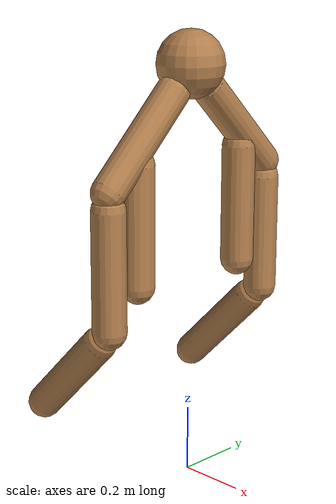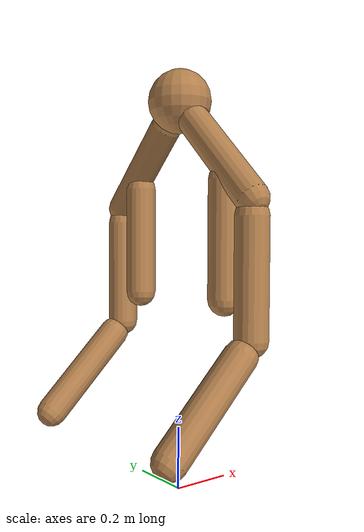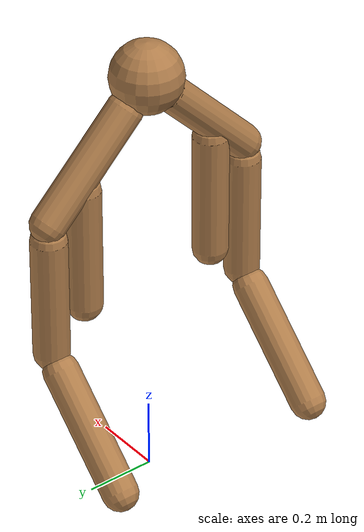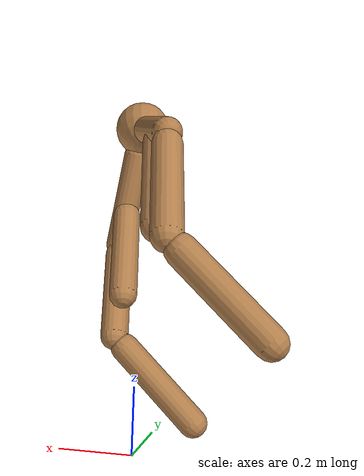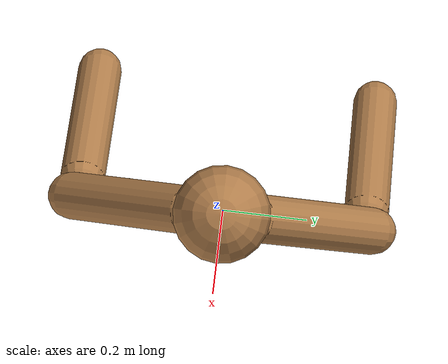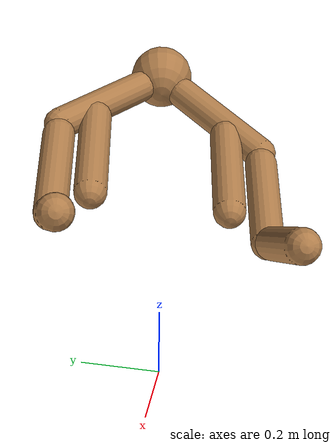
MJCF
<?xml version='1.0' encoding='UTF-8'?>
<!-- Universal Animal Template: unimal -->
<mujoco model="unimal">
  <compiler angle="degree"/>
  <size njmax="2000" nconmax="500"/>
  <option timestep=".005">
    <flag filterparent="disable"/>
  </option>
  <!-- Common defaults to make search space tractable -->
  <default>
    <!-- Define motor defaults -->
    <motor ctrlrange="-1 1" ctrllimited="true"/>
    <!-- Define joint defaults -->
    <default class="normal_joint">
      <joint type="hinge" damping="1" stiffness="1" armature="1" limited="true" range="-120 120" solimplimit="0 0.99 0.01"/>
    </default>
    <default class="walker_joint">
      <joint type="hinge" damping="0.2" stiffness="1" armature=".01" limited="true" range="-120 120" solimplimit="0 0.99 0.01"/>
    </default>
    <default class="stiff_joint">
      <joint type="hinge" damping="5" stiffness="10" armature=".01" limited="true" solimplimit="0 0.99 0.01"/>
    </default>
    <default class="free">
      <joint limited="false" damping="0" armature="0" stiffness="0"/>
    </default>
    <default class="growth_site">
      <site size="1e-6 1e-6 1e-6"/>
    </default>
    <default class="torso_growth_site">
      <site size="1e-6 1e-6 1e-6"/>
    </default>
    <default class="mirror_growth_site">
      <site size="1e-6 1e-6 1e-6"/>
    </default>
    <default class="btm_pos_site">
      <site size="1e-6 1e-6 1e-6"/>
    </default>
    <default class="box_face_site">
      <site size="1e-6 1e-6 1e-6"/>
    </default>
    <default class="imu_vel">
      <site type="box" size="0.05" rgba="1 0 0 0"/>
    </default>
    <default class="touch_site">
      <site group="3" rgba="0 0 1 .3"/>
    </default>
    <default class="food_site">
      <site material="food" size="0.15"/>
    </default>
    <!-- Define geom defaults -->
    <geom type="capsule" condim="3" friction="0.7 0.1 0.1" material="self"/>
  </default>
  <worldbody>
    <light diffuse="1 1 1" directional="true" exponent="1" pos="0 0 8" specular="0.1 0.1 0.1" dir="0 0 -1"/>
    <!-- Programatically generated xml goes here -->
    <body name="torso/0" pos="0 0 1.24">
      <joint name="root" type="free" class="free"/>
      <site name="root" class="imu_vel"/>
      <geom name="torso/0" type="sphere" size="0.1" condim="3" density="800"/>
      <camera name="side" pos="0 -7 2" xyaxes="1 0 0 0 1 2" mode="trackcom"/>
      <site name="torso/0" class="growth_site" pos="0 0 0"/>
      <site name="torso/btm_pos/0" class="btm_pos_site" pos="0 0 -0.1"/>
      <site name="torso/touch/0" class="touch_site" size="0.11"/>
      <site name="torso/horizontal_y/0" class="torso_growth_site" pos="-0.1 0 0"/>
      <body name="limb/0" pos="0.0 0.07 -0.07">
        <joint name="limbx/0" type="hinge" class="normal_joint" range="-90 0" pos="0.0 -0.04 0.04" axis="1.0 0.0 0.0"/>
        <joint name="limby/0" type="hinge" class="normal_joint" range="-45 0" pos="0.0 -0.04 0.04" axis="0.0 0.7071 0.7071"/>
        <geom name="limb/0" type="capsule" fromto="0.0 0.0 0.0 0.0 0.25 -0.25" size="0.05" density="800"/>
        <site name="limb/mid/0" class="mirror_growth_site" pos="0.0 0.14 -0.14"/>
        <site name="limb/btm/0" class="mirror_growth_site" pos="0.0 0.25 -0.25"/>
        <site name="limb/btm_pos/0" class="btm_pos_site" pos="0.0 0.25 -0.25"/>
        <site name="limb/touch/0" class="touch_site" size="0.060000000000000005" fromto="0.0 0.0 0.0 0.0 0.25 -0.25" type="capsule"/>
        <body name="limb/8" pos="0.0 0.25 -0.3">
          <joint name="limbx/8" type="hinge" class="normal_joint" range="-30 30" pos="0.0 0.0 0.05" axis="1.0 0.0 0.0"/>
          <joint name="limby/8" type="hinge" class="normal_joint" range="-60 0" pos="0.0 0.0 0.05" axis="0.0 1.0 0.0"/>
          <geom name="limb/8" type="capsule" fromto="0.0 0.0 0.0 0.0 0.0 -0.35" size="0.05" density="800"/>
          <site name="limb/mid/8" class="mirror_growth_site" pos="0.0 0.0 -0.2"/>
          <site name="limb/btm/8" class="mirror_growth_site" pos="0.0 0.0 -0.35"/>
          <site name="limb/btm_pos/8" class="btm_pos_site" pos="0.0 0.0 -0.4"/>
          <site name="limb/touch/8" class="touch_site" size="0.060000000000000005" fromto="0.0 0.0 0.0 0.0 0.0 -0.35" type="capsule"/>
          <body name="limb/12" pos="-0.04 0.0 -0.38999999999999996">
            <joint name="limbx/12" type="hinge" class="normal_joint" range="0 30" pos="0.04 0.0 0.04" axis="0.7071 0.0 -0.7071"/>
            <joint name="limby/12" type="hinge" class="normal_joint" range="0 45" pos="0.04 0.0 0.04" axis="0.0 1.0 0.0"/>
            <geom name="limb/12" type="capsule" fromto="0.0 0.0 0.0 -0.25 0.0 -0.25" size="0.05" density="800"/>
            <site name="limb/mid/12" class="mirror_growth_site" pos="-0.14 0.0 -0.14"/>
            <site name="limb/btm/12" class="mirror_growth_site" pos="-0.25 0.0 -0.25"/>
            <site name="limb/btm_pos/12" class="btm_pos_site" pos="-0.28 0.0 -0.28"/>
            <site name="limb/touch/12" class="touch_site" size="0.060000000000000005" fromto="0.0 0.0 0.0 -0.25 0.0 -0.25" type="capsule"/>
          </body>
        </body>
        <body name="limb/10" pos="0.0 0.14 -0.19">
          <joint name="limbx/10" type="hinge" class="normal_joint" range="-60 30" pos="0.0 0.0 0.05" axis="1.0 0.0 0.0"/>
          <joint name="limby/10" type="hinge" class="normal_joint" range="-60 30" pos="0.0 0.0 0.05" axis="0.0 1.0 0.0"/>
          <geom name="limb/10" type="capsule" fromto="0.0 0.0 0.0 0.0 0.0 -0.35" size="0.05" density="800"/>
          <site name="limb/mid/10" class="mirror_growth_site" pos="0.0 0.0 -0.2"/>
          <site name="limb/btm/10" class="mirror_growth_site" pos="0.0 0.0 -0.35"/>
          <site name="limb/btm_pos/10" class="btm_pos_site" pos="0.0 0.0 -0.4"/>
          <site name="limb/touch/10" class="touch_site" size="0.060000000000000005" fromto="0.0 0.0 0.0 0.0 0.0 -0.35" type="capsule"/>
        </body>
      </body>
      <body name="limb/1" pos="0.0 -0.07 -0.07">
        <joint name="limbx/1" type="hinge" class="normal_joint" range="-90 0" pos="0.0 0.04 0.04" axis="1.0 0.0 -0.0"/>
        <joint name="limby/1" type="hinge" class="normal_joint" range="-45 0" pos="0.0 0.04 0.04" axis="-0.0 0.7071 -0.7071"/>
        <geom name="limb/1" type="capsule" fromto="0.0 0.0 0.0 0.0 -0.25 -0.25" size="0.05" density="800"/>
        <site name="limb/mid/1" class="mirror_growth_site" pos="0.0 -0.14 -0.14"/>
        <site name="limb/btm/1" class="mirror_growth_site" pos="0.0 -0.25 -0.25"/>
        <site name="limb/btm_pos/1" class="btm_pos_site" pos="0.0 -0.25 -0.25"/>
        <site name="limb/touch/1" class="touch_site" size="0.060000000000000005" fromto="0.0 0.0 0.0 0.0 -0.25 -0.25" type="capsule"/>
        <body name="limb/9" pos="0.0 -0.25 -0.3">
          <joint name="limbx/9" type="hinge" class="normal_joint" range="-30 30" pos="0.0 0.0 0.05" axis="1.0 0.0 0.0"/>
          <joint name="limby/9" type="hinge" class="normal_joint" range="-60 0" pos="0.0 0.0 0.05" axis="0.0 1.0 0.0"/>
          <geom name="limb/9" type="capsule" fromto="0.0 0.0 0.0 0.0 0.0 -0.35" size="0.05" density="800"/>
          <site name="limb/mid/9" class="mirror_growth_site" pos="0.0 0.0 -0.2"/>
          <site name="limb/btm/9" class="mirror_growth_site" pos="0.0 0.0 -0.35"/>
          <site name="limb/btm_pos/9" class="btm_pos_site" pos="0.0 0.0 -0.4"/>
          <site name="limb/touch/9" class="touch_site" size="0.060000000000000005" fromto="0.0 0.0 0.0 0.0 0.0 -0.35" type="capsule"/>
          <body name="limb/13" pos="-0.04 0.0 -0.38999999999999996">
            <joint name="limbx/13" type="hinge" class="normal_joint" range="0 30" pos="0.04 0.0 0.04" axis="0.7071 0.0 -0.7071"/>
            <joint name="limby/13" type="hinge" class="normal_joint" range="0 45" pos="0.04 0.0 0.04" axis="0.0 1.0 0.0"/>
            <geom name="limb/13" type="capsule" fromto="0.0 0.0 0.0 -0.25 0.0 -0.25" size="0.05" density="800"/>
            <site name="limb/mid/13" class="mirror_growth_site" pos="-0.14 0.0 -0.14"/>
            <site name="limb/btm/13" class="mirror_growth_site" pos="-0.25 0.0 -0.25"/>
            <site name="limb/btm_pos/13" class="btm_pos_site" pos="-0.28 0.0 -0.28"/>
            <site name="limb/touch/13" class="touch_site" size="0.060000000000000005" fromto="0.0 0.0 0.0 -0.25 0.0 -0.25" type="capsule"/>
          </body>
        </body>
        <body name="limb/11" pos="0.0 -0.14 -0.19">
          <joint name="limbx/11" type="hinge" class="normal_joint" range="-60 30" pos="0.0 0.0 0.05" axis="1.0 0.0 0.0"/>
          <joint name="limby/11" type="hinge" class="normal_joint" range="-60 30" pos="0.0 0.0 0.05" axis="0.0 1.0 0.0"/>
          <geom name="limb/11" type="capsule" fromto="0.0 0.0 0.0 0.0 0.0 -0.35" size="0.05" density="800"/>
          <site name="limb/mid/11" class="mirror_growth_site" pos="0.0 0.0 -0.2"/>
          <site name="limb/btm/11" class="mirror_growth_site" pos="0.0 0.0 -0.35"/>
          <site name="limb/btm_pos/11" class="btm_pos_site" pos="0.0 0.0 -0.4"/>
          <site name="limb/touch/11" class="touch_site" size="0.060000000000000005" fromto="0.0 0.0 0.0 0.0 0.0 -0.35" type="capsule"/>
        </body>
      </body>
    </body>
  </worldbody>
  <actuator>
    <motor joint="limbx/0" gear="300" name="limbx/0"/>
    <motor joint="limby/0" gear="200" name="limby/0"/>
    <motor joint="limbx/8" gear="200" name="limbx/8"/>
    <motor joint="limby/8" gear="250" name="limby/8"/>
    <motor joint="limbx/12" gear="300" name="limbx/12"/>
    <motor joint="limby/12" gear="150" name="limby/12"/>
    <motor joint="limbx/10" gear="200" name="limbx/10"/>
    <motor joint="limby/10" gear="250" name="limby/10"/>
    <motor joint="limbx/1" gear="300" name="limbx/1"/>
    <motor joint="limby/1" gear="200" name="limby/1"/>
    <motor joint="limbx/9" gear="200" name="limbx/9"/>
    <motor joint="limby/9" gear="250" name="limby/9"/>
    <motor joint="limbx/13" gear="300" name="limbx/13"/>
    <motor joint="limby/13" gear="150" name="limby/13"/>
    <motor joint="limbx/11" gear="200" name="limbx/11"/>
    <motor joint="limby/11" gear="250" name="limby/11"/>
  </actuator>
  <sensor>
    <accelerometer name="torso_accel" site="root"/>
    <gyro name="torso_gyro" site="root"/>
    <velocimeter name="torso_vel" site="root"/>
    <subtreeangmom name="unimal_am" body="torso/0"/>
    <touch name="torso/0" site="torso/touch/0"/>
    <touch name="limb/0" site="limb/touch/0"/>
    <touch name="limb/8" site="limb/touch/8"/>
    <touch name="limb/12" site="limb/touch/12"/>
    <touch name="limb/10" site="limb/touch/10"/>
    <touch name="limb/1" site="limb/touch/1"/>
    <touch name="limb/9" site="limb/touch/9"/>
    <touch name="limb/13" site="limb/touch/13"/>
    <touch name="limb/11" site="limb/touch/11"/>
  </sensor>
  <!-- Add hfield assets -->
  <asset/>
  <!-- List of contacts to exclude -->
  <contact/>
  <!-- Define material, texture etc -->
  <asset>
    <material name="grid" texture="grid" texrepeat="1 1" texuniform="true" reflectance="0.1"/>
    <material name="hfield" texture="hfield" texrepeat="1 1" texuniform="true" reflectance="0.1"/>
    <material name="wall" texture="wall" texrepeat="1 1" texuniform="true" reflectance=".5"/>
    <material name="platform" texture="platform" texrepeat="1 1" texuniform="true" reflectance=".5"/>
    <material name="boundary" texture="boundary" texrepeat="1 1" texuniform="true" reflectance=".5"/>
    <material name="jump" texture="jump" texrepeat="1 1" texuniform="true" reflectance=".5"/>
    <material name="goal" rgba="1 0 0 1"/>
    <material name="food" rgba="0 0 1 1" emission="1"/>
    <material name="init_position" rgba="0 1 0 0.7"/>
    <material name="self" rgba=".7 .5 .3 1"/>
    <material name="self_invisible" rgba=".7 .5 .3 0"/>
    <material name="self_default" rgba=".7 .5 .3 1"/>
    <material name="self_highlight" rgba="0 .5 .3 1"/>
    <material name="effector" rgba=".7 .4 .2 1"/>
    <material name="effector_default" rgba=".7 .4 .2 1"/>
    <material name="effector_highlight" rgba="0 .5 .3 1"/>
    <material name="decoration" rgba=".3 .5 .7 1"/>
    <material name="eye" rgba="0 .2 1 1"/>
    <material name="target" rgba=".6 .3 .3 1"/>
    <material name="target_default" rgba=".6 .3 .3 1"/>
    <material name="target_highlight" rgba=".6 .3 .3 .4"/>
    <material name="site" rgba=".5 .5 .5 .3"/>
    <material name="ball" texture="ball"/>
  </asset>
  <asset>
    <texture name="grid" type="2d" builtin="checker" rgb1="0.4 0.4 0.4" rgb2="0.4 0.4 0.4" width="300" height="300" mark="edge" markrgb="0.2 0.2 0.2"/>
    <texture name="hfield" type="2d" builtin="checker" rgb1="0.4 0.4 0.4" rgb2="0.4 0.4 0.4" width="300" height="300" mark="edge" markrgb="0.2 0.2 0.2"/>
    <texture name="wall" type="2d" builtin="flat" rgb1="0.9 0.7 0" rgb2="0.9 0.7 0" width="300" height="300"/>
    <texture name="platform" type="2d" builtin="flat" rgb1="0.3 0 0.8" rgb2="0.3 0 0.8" width="300" height="300"/>
    <texture name="boundary" type="2d" builtin="flat" rgb1="0.3 0.3 0.3" rgb2="0.3 0.3 0.3" width="300" height="300"/>
    <texture name="jump" type="2d" builtin="flat" rgb1="0.3 0.3 0.3" rgb2="0.3 0.3 0.3" width="300" height="300"/>
    <texture name="skybox" type="skybox" builtin="gradient" rgb1="1 1 1" rgb2="0.6 0.6 0.6" width="800" height="800"/>
    <texture name="ball" builtin="checker" mark="cross" width="151" height="151" rgb1="0.1 0.1 0.1" rgb2="0.9 0.9 0.9" markrgb="1 1 1"/>
  </asset>
  <visual>
    <headlight ambient="0.6 0.6 0.6" diffuse="0.3 0.3 0.3" specular="0 0 0"/>
    <map znear=".01" shadowclip="0.5"/>
    <quality shadowsize="16384"/>
  </visual>
</mujoco>
